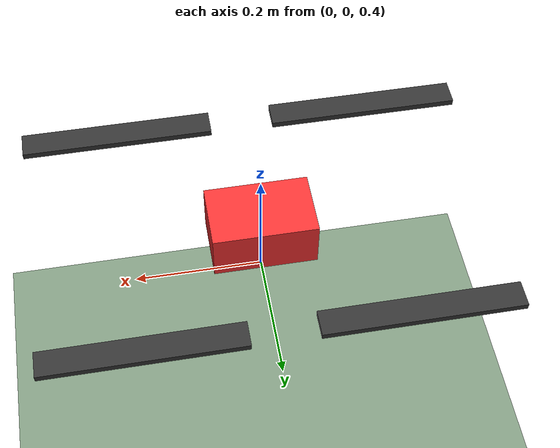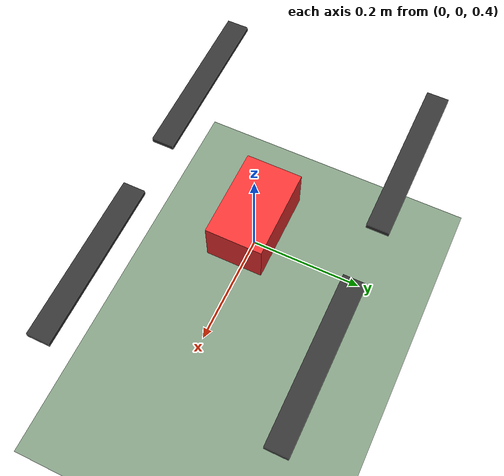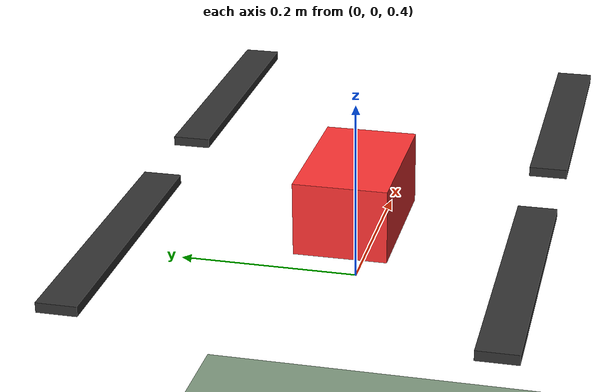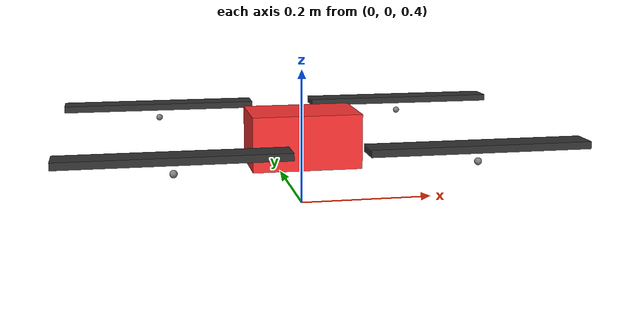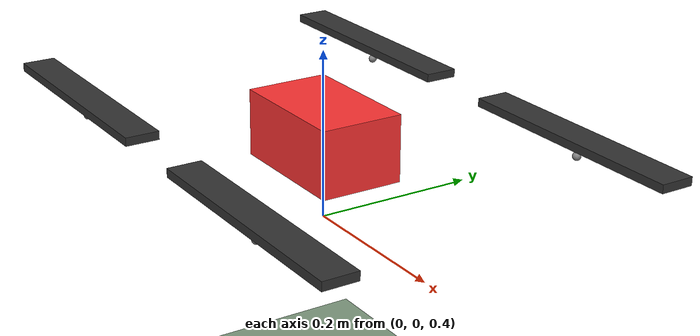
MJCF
<mujoco model="quadrotor_uav">
  <option timestep="0.002" gravity="0 0 -9.81"/>
  <asset>
    <texture type="skybox" builtin="gradient" rgb1="0.4 0.6 1" rgb2="0 0 0" width="512" height="512"/>
  </asset>
  <worldbody>
    <light directional="true" diffuse="0.8 0.8 0.8" specular="0.3 0.3 0.3" pos="0 0 3" dir="0 0 -1"/>
    <geom name="ground" type="plane" size="8 8 0.1" rgba="0.5 0.6 0.5 1"/>
    <body name="drone" pos="0 0 0.5">
      <freejoint/>
      <geom name="frame" type="box" size="0.08 0.05 0.04" pos="0 0 0" mass="0.5" rgba="1 0.2 0.2 1"/>
      <geom name="rotor1_vis" type="box" size="0.15 0.02 0.005" pos="0.2 0.2 0.02" rgba="0.2 0.2 0.2 1" contype="0" conaffinity="0"/>
      <geom name="rotor2_vis" type="box" size="0.15 0.02 0.005" pos="-0.2 0.2 0.02" rgba="0.2 0.2 0.2 1" contype="0" conaffinity="0"/>
      <geom name="rotor3_vis" type="box" size="0.15 0.02 0.005" pos="-0.2 -0.2 0.02" rgba="0.2 0.2 0.2 1" contype="0" conaffinity="0"/>
      <geom name="rotor4_vis" type="box" size="0.15 0.02 0.005" pos="0.2 -0.2 0.02" rgba="0.2 0.2 0.2 1" contype="0" conaffinity="0"/>
      <site name="rotor1" pos="0.2 0.2 0.0"/>
      <site name="rotor2" pos="-0.2 0.2 0.0"/>
      <site name="rotor3" pos="-0.2 -0.2 0.0"/>
      <site name="rotor4" pos="0.2 -0.2 0.0"/>\n      <camera name="cam_front" pos="0.25 0 0.05" zaxis="-1 0 0" fovy="60"/>
    </body>
  <camera name="view" pos="5 -6 4" zaxis="0.57 -0.68 0.45"/>
  </worldbody>
  <actuator>
    <general name="thr1" site="rotor1" ctrllimited="true" ctrlrange="0 10"/>
    <general name="thr2" site="rotor2" ctrllimited="true" ctrlrange="0 10"/>
    <general name="thr3" site="rotor3" ctrllimited="true" ctrlrange="0 10"/>
    <general name="thr4" site="rotor4" ctrllimited="true" ctrlrange="0 10"/>
  </actuator>
</mujoco>
